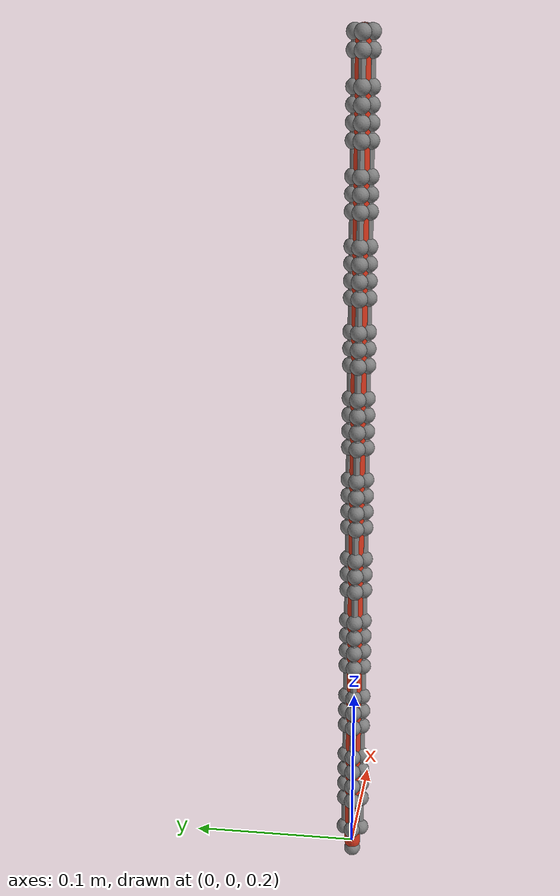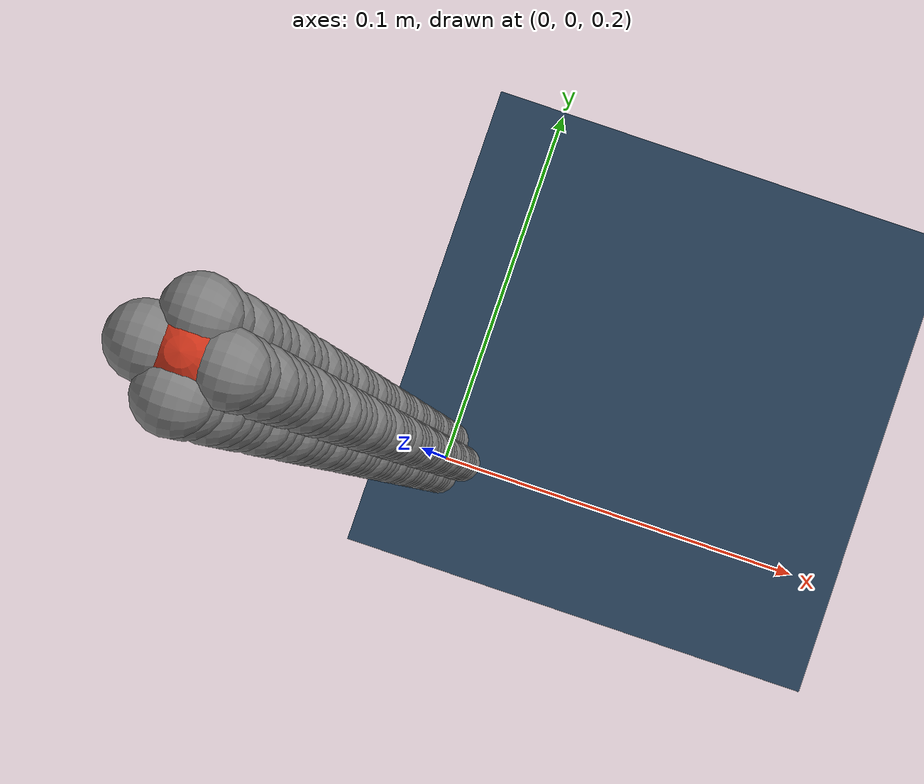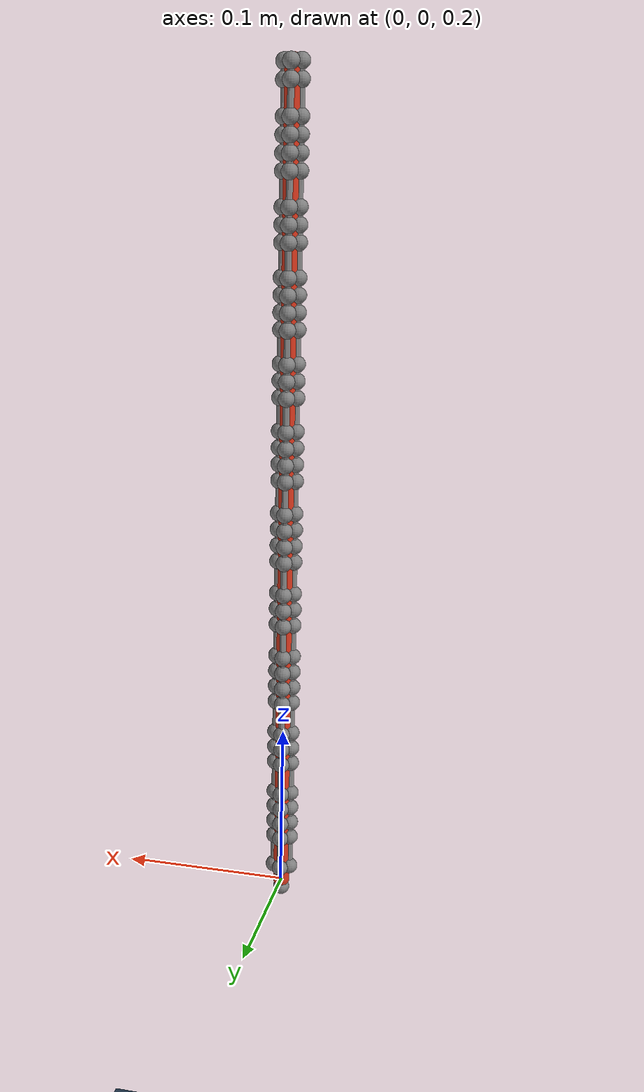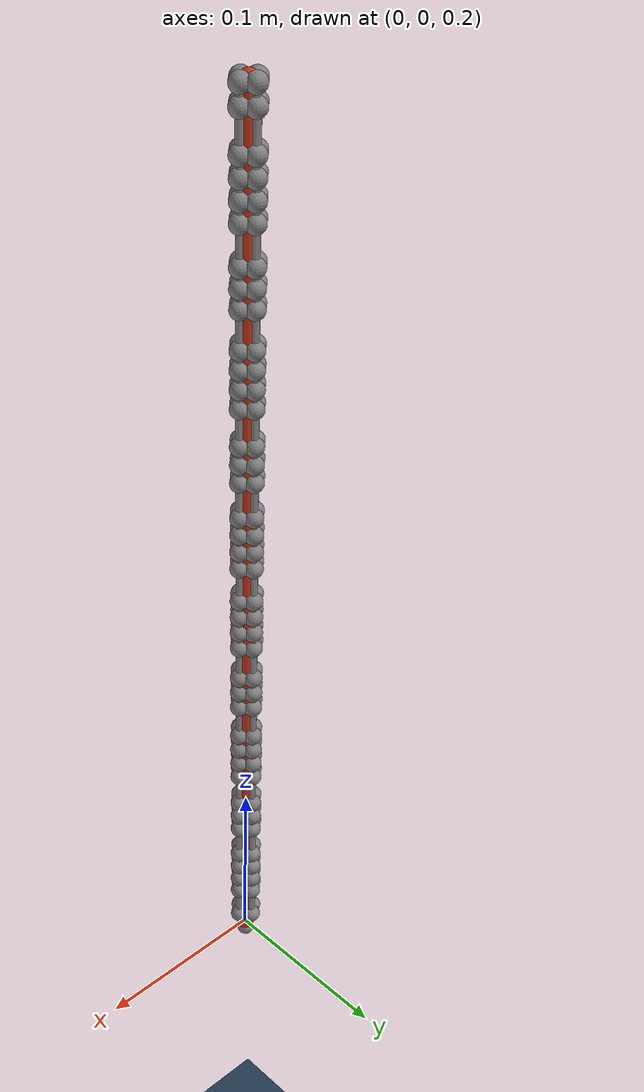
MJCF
<mujoco model="cable_trunk_model_example">
<option gravity="0 0 0"/>
  <compiler angle="radian"/>
  <extension>
    <plugin plugin="mujoco.elasticity.cable">
      <instance name="compositeactuated">
        <config key="twist" value="1e8"/>
        <config key="bend" value="1e8"/>
        <config key="vmax" value="0"/>
      </instance>
    </plugin>
  </extension>
  <custom>
    <text name="composite_actuated" data="rope_actuated"/>
  </custom>
  <asset>
    <texture type="2d" name="grid" builtin="checker" rgb1="0.1 0.2 0.3" rgb2="0.2 0.3 0.4" width="300" height="300"/>
    <material name="grid" texture="grid" texrepeat="8 8" reflectance="0.2"/>
  </asset>
  <worldbody>
    <geom size="10 10 0.01" type="plane" material="grid"/>
    <light pos="0 0 2" dir="0 0 -1"/>
    <body name="actuatedB_first" pos="0 0 0.7" quat="0 -0.707107 0 0.707107">
      <!-- Add slider joint with stiffness and damping to simulate elongation of material-->
      <joint name="slider_cable_world" pos="0 0 0" type="slide" axis="1 0 0" group="3" stiffness="1e2" damping="0.8"/>
      <geom name="actuatedG0" size="0.005 0.005" pos="0.005 0 0" quat="0.707107 0 -0.707107 0" type="capsule" rgba="0.8 0.2 0.1 1"/>
      <site name="actuatedS_first" pos="0 0 0" group="3"/>
      <!-- Add sides for tendon to pass through-->
      <site name="cable_0_y_front" pos="0 0.005 0"/>
      <site name="cable_0_y_back" pos="0 -0.005 0"/>
      <site name="cable_0_z_front" pos="0 0 0.005"/>
      <site name="cable_0_z_back" pos="0 0 -0.005"/>
      <plugin instance="compositeactuated"/>
      <body name="actuatedB_1" pos="0.00999999 0 0">
        <joint name="actuatedJ_1" pos="0 0 0" type="ball" group="3" actuatorfrclimited="false" armature="0.01" damping="0.25"/>
        <geom name="actuatedG1" size="0.005 0.00999999" pos="0.00999999 0 0" quat="0.707107 0 -0.707107 0" type="capsule" rgba="0.8 0.2 0.1 1"/>
        <!-- Add sides for tendon to pass through-->
        <site name="cable_1_y_front" pos="0 0.005 0"/>
        <site name="cable_1_y_back" pos="0 -0.005 0"/>
        <site name="cable_1_z_front" pos="0 0 0.005"/>
        <site name="cable_1_z_back" pos="0 0 -0.005"/>
        <plugin instance="compositeactuated"/>
        <body name="actuatedB_2" pos="0.02 0 0">
          <joint name="actuatedJ_2" pos="0 0 0" type="ball" group="3" actuatorfrclimited="false" armature="0.01" damping="0.25"/>
          <geom name="actuatedG2" size="0.005 0.005" pos="0.005 0 0" quat="0.707107 0 -0.707107 0" type="capsule" rgba="0.8 0.2 0.1 1"/>
          <!-- Add sides for tendon to pass through-->
          <site name="cable_2_y_front" pos="0 0.005 0"/>
          <site name="cable_2_y_back" pos="0 -0.005 0"/>
          <site name="cable_2_z_front" pos="0 0 0.005"/>
          <site name="cable_2_z_back" pos="0 0 -0.005"/>
          <plugin instance="compositeactuated"/>
          <body name="actuatedB_3" pos="0.00999999 0 0">
            <joint name="actuatedJ_3" pos="0 0 0" type="ball" group="3" actuatorfrclimited="false" armature="0.01" damping="0.25"/>
            <geom name="actuatedG3" size="0.005 0.00500003" pos="0.00500003 0 0" quat="0.707107 0 -0.707107 0" type="capsule" rgba="0.8 0.2 0.1 1"/>
            <!-- Add sides for tendon to pass through-->
            <site name="cable_3_y_front" pos="0 0.005 0"/>
            <site name="cable_3_y_back" pos="0 -0.005 0"/>
            <site name="cable_3_z_front" pos="0 0 0.005"/>
            <site name="cable_3_z_back" pos="0 0 -0.005"/>
            <plugin instance="compositeactuated"/>
            <body name="actuatedB_4" pos="0.0100001 0 0">
              <joint name="actuatedJ_4" pos="0 0 0" type="ball" group="3" actuatorfrclimited="false" armature="0.01" damping="0.25"/>
              <!-- Add sides for tendon to pass through-->
              <site name="cable_4_y_front" pos="0 0.005 0"/>
              <site name="cable_4_y_back" pos="0 -0.005 0"/>
              <site name="cable_4_z_front" pos="0 0 0.005"/>
              <site name="cable_4_z_back" pos="0 0 -0.005"/>
              <geom name="actuatedG4" size="0.005 0.005" pos="0.005 0 0" quat="0.707107 0 -0.707107 0" type="capsule" rgba="0.8 0.2 0.1 1"/>
              <plugin instance="compositeactuated"/>
              <body name="actuatedB_5" pos="0.00999999 0 0">
                <joint name="actuatedJ_5" pos="0 0 0" type="ball" group="3" actuatorfrclimited="false" armature="0.01" damping="0.25"/>
                <geom name="actuatedG5" size="0.005 0.00999999" pos="0.00999999 0 0" quat="0.707107 0 -0.707107 0" type="capsule" rgba="0.8 0.2 0.1 1"/>
                <!-- Add sides for tendon to pass through-->
                <site name="cable_5_y_front" pos="0 0.005 0"/>
                <site name="cable_5_y_back" pos="0 -0.005 0"/>
                <site name="cable_5_z_front" pos="0 0 0.005"/>
                <site name="cable_5_z_back" pos="0 0 -0.005"/>
                  <plugin instance="compositeactuated"/>
                <body name="actuatedB_6" pos="0.02 0 0">
                  <joint name="actuatedJ_6" pos="0 0 0" type="ball" group="3" actuatorfrclimited="false" armature="0.01" damping="0.25"/>
                  <geom name="actuatedG6" size="0.005 0.005" pos="0.005 0 0" quat="0.707107 0 -0.707107 0" type="capsule" rgba="0.8 0.2 0.1 1"/>
                  <!-- Add sides for tendon to pass through-->
                  <site name="cable_6_y_front" pos="0 0.005 0"/>
                  <site name="cable_6_y_back" pos="0 -0.005 0"/>
                  <site name="cable_6_z_front" pos="0 0 0.005"/>
                  <site name="cable_6_z_back" pos="0 0 -0.005"/>
                  <plugin instance="compositeactuated"/>
                  <body name="actuatedB_7" pos="0.00999999 0 0">
                    <joint name="actuatedJ_7" pos="0 0 0" type="ball" group="3" actuatorfrclimited="false" armature="0.01" damping="0.25"/>
                    <geom name="actuatedG7" size="0.005 0.005" pos="0.005 0 0" quat="0.707107 0 -0.707107 0" type="capsule" rgba="0.8 0.2 0.1 1"/>
                    <!-- Add sides for tendon to pass through-->
                    <site name="cable_7_y_front" pos="0 0.005 0"/>
                    <site name="cable_7_y_back" pos="0 -0.005 0"/>
                    <site name="cable_7_z_front" pos="0 0 0.005"/>
                    <site name="cable_7_z_back" pos="0 0 -0.005"/>
                    <plugin instance="compositeactuated"/>
                    <body name="actuatedB_8" pos="0.00999999 0 0">
                      <joint name="actuatedJ_8" pos="0 0 0" type="ball" group="3" actuatorfrclimited="false" armature="0.01" damping="0.25"/>
                      <geom name="actuatedG8" size="0.005 0.01" pos="0.01 0 0" quat="0.707107 0 -0.707107 0" type="capsule" rgba="0.8 0.2 0.1 1"/>
                      <!-- Add sides for tendon to pass through-->
                      <site name="cable_8_y_front" pos="0 0.005 0"/>
                      <site name="cable_8_y_back" pos="0 -0.005 0"/>
                      <site name="cable_8_z_front" pos="0 0 0.005"/>
                      <site name="cable_8_z_back" pos="0 0 -0.005"/>
                      <plugin instance="compositeactuated"/>
                      <body name="actuatedB_9" pos="0.02 0 0">
                        <joint name="actuatedJ_9" pos="0 0 0" type="ball" group="3" actuatorfrclimited="false" armature="0.01" damping="0.25"/>
                        <geom name="actuatedG9" size="0.005 0.005" pos="0.005 0 0" quat="0.707107 0 -0.707107 0" type="capsule" rgba="0.8 0.2 0.1 1"/>
                        <!-- Add sides for tendon to pass through-->
                        <site name="cable_9_y_front" pos="0 0.005 0"/>
                        <site name="cable_9_y_back" pos="0 -0.005 0"/>
                        <site name="cable_9_z_front" pos="0 0 0.005"/>
                        <site name="cable_9_z_back" pos="0 0 -0.005"/>
                        <plugin instance="compositeactuated"/>
                        <body name="actuatedB_10" pos="0.00999999 0 0">
                          <joint name="actuatedJ_10" pos="0 0 0" type="ball" group="3" actuatorfrclimited="false" armature="0.01" damping="0.25"/>
                          <geom name="actuatedG10" size="0.005 0.005" pos="0.005 0 0" quat="0.707107 0 -0.707107 0" type="capsule" rgba="0.8 0.2 0.1 1"/>
                          <!-- Add sides for tendon to pass through-->
                          <site name="cable_10_y_front" pos="0 0.005 0"/>
                          <site name="cable_10_y_back" pos="0 -0.005 0"/>
                          <site name="cable_10_z_front" pos="0 0 0.005"/>
                          <site name="cable_10_z_back" pos="0 0 -0.005"/>
                          <plugin instance="compositeactuated"/>
                          <body name="actuatedB_11" pos="0.00999999 0 0">
                            <joint name="actuatedJ_11" pos="0 0 0" type="ball" group="3" actuatorfrclimited="false" armature="0.01" damping="0.25"/>
                            <geom name="actuatedG11" size="0.005 0.005" pos="0.005 0 0" quat="0.707107 0 -0.707107 0" type="capsule" rgba="0.8 0.2 0.1 1"/>
                            <!-- Add sides for tendon to pass through-->
                            <site name="cable_11_y_front" pos="0 0.005 0"/>
                            <site name="cable_11_y_back" pos="0 -0.005 0"/>
                            <site name="cable_11_z_front" pos="0 0 0.005"/>
                            <site name="cable_11_z_back" pos="0 0 -0.005"/>
                            <plugin instance="compositeactuated"/>
                            <body name="actuatedB_12" pos="0.00999999 0 0">
                              <joint name="actuatedJ_12" pos="0 0 0" type="ball" group="3" actuatorfrclimited="false" armature="0.01" damping="0.25"/>
                              <geom name="actuatedG12" size="0.005 0.01" pos="0.01 0 0" quat="0.707107 0 -0.707107 0" type="capsule" rgba="0.8 0.2 0.1 1"/>
                              <!-- Add sides for tendon to pass through-->
                              <site name="cable_12_y_front" pos="0 0.005 0"/>
                              <site name="cable_12_y_back" pos="0 -0.005 0"/>
                              <site name="cable_12_z_front" pos="0 0 0.005"/>
                              <site name="cable_12_z_back" pos="0 0 -0.005"/>
                              <plugin instance="compositeactuated"/>
                              <body name="actuatedB_13" pos="0.02 0 0">
                                <joint name="actuatedJ_13" pos="0 0 0" type="ball" group="3" actuatorfrclimited="false" armature="0.01" damping="0.25"/>
                                <geom name="actuatedG13" size="0.005 0.005" pos="0.005 0 0" quat="0.707107 0 -0.707107 0" type="capsule" rgba="0.8 0.2 0.1 1"/>
                                <!-- Add sides for tendon to pass through-->
                                <site name="cable_13_y_front" pos="0 0.005 0"/>
                                <site name="cable_13_y_back" pos="0 -0.005 0"/>
                                <site name="cable_13_z_front" pos="0 0 0.005"/>
                                <site name="cable_13_z_back" pos="0 0 -0.005"/>
                                <plugin instance="compositeactuated"/>
                                <body name="actuatedB_14" pos="0.00999999 0 0">
                                  <joint name="actuatedJ_14" pos="0 0 0" type="ball" group="3" actuatorfrclimited="false" armature="0.01" damping="0.25"/>
                                  <geom name="actuatedG14" size="0.005 0.005" pos="0.005 0 0" quat="0.707107 0 -0.707107 0" type="capsule" rgba="0.8 0.2 0.1 1"/>
                                  <!-- Add sides for tendon to pass through-->
                                  <site name="cable_14_y_front" pos="0 0.005 0"/>
                                  <site name="cable_14_y_back" pos="0 -0.005 0"/>
                                  <site name="cable_14_z_front" pos="0 0 0.005"/>
                                  <site name="cable_14_z_back" pos="0 0 -0.005"/>
                                  <plugin instance="compositeactuated"/>
                                  <body name="actuatedB_15" pos="0.00999999 0 0">
                                    <joint name="actuatedJ_15" pos="0 0 0" type="ball" group="3" actuatorfrclimited="false" armature="0.01" damping="0.25"/>
                                    <geom name="actuatedG15" size="0.005 0.00999999" pos="0.00999999 0 0" quat="0.707107 0 -0.707107 0" type="capsule" rgba="0.8 0.2 0.1 1"/>
                                    <!-- Add sides for tendon to pass through-->
                                    <site name="cable_15_y_front" pos="0 0.005 0"/>
                                    <site name="cable_15_y_back" pos="0 -0.005 0"/>
                                    <site name="cable_15_z_front" pos="0 0 0.005"/>
                                    <site name="cable_15_z_back" pos="0 0 -0.005"/>
                                    <plugin instance="compositeactuated"/>
                                    <body name="actuatedB_16" pos="0.02 0 0">
                                      <joint name="actuatedJ_16" pos="0 0 0" type="ball" group="3" actuatorfrclimited="false" armature="0.01" damping="0.25"/>
                                      <geom name="actuatedG16" size="0.005 0.00500001" pos="0.00500001 0 0" quat="0.707107 0 -0.707107 0" type="capsule" rgba="0.8 0.2 0.1 1"/>
                                      <!-- Add sides for tendon to pass through-->
                                      <site name="cable_16_y_front" pos="0 0.005 0"/>
                                      <site name="cable_16_y_back" pos="0 -0.005 0"/>
                                      <site name="cable_16_z_front" pos="0 0 0.005"/>
                                      <site name="cable_16_z_back" pos="0 0 -0.005"/>
                                      <plugin instance="compositeactuated"/>
                                      <body name="actuatedB_17" pos="0.01 0 0">
                                        <joint name="actuatedJ_17" pos="0 0 0" type="ball" group="3" actuatorfrclimited="false" armature="0.01" damping="0.25"/>
                                        <geom name="actuatedG17" size="0.005 0.005" pos="0.005 0 0" quat="0.707107 0 -0.707107 0" type="capsule" rgba="0.8 0.2 0.1 1"/>
                                        <!-- Add sides for tendon to pass through-->
                                        <site name="cable_17_y_front" pos="0 0.005 0"/>
                                        <site name="cable_17_y_back" pos="0 -0.005 0"/>
                                        <site name="cable_17_z_front" pos="0 0 0.005"/>
                                        <site name="cable_17_z_back" pos="0 0 -0.005"/>
                                        <plugin instance="compositeactuated"/>
                                        <body name="actuatedB_18" pos="0.00999999 0 0">
                                          <joint name="actuatedJ_18" pos="0 0 0" type="ball" group="3" actuatorfrclimited="false" armature="0.01" damping="0.25"/>
                                          <geom name="actuatedG18" size="0.005 0.005" pos="0.005 0 0" quat="0.707107 0 -0.707107 0" type="capsule" rgba="0.8 0.2 0.1 1"/>
                                          <!-- Add sides for tendon to pass through-->
                                          <site name="cable_18_y_front" pos="0 0.005 0"/>
                                          <site name="cable_18_y_back" pos="0 -0.005 0"/>
                                          <site name="cable_18_z_front" pos="0 0 0.005"/>
                                          <site name="cable_18_z_back" pos="0 0 -0.005"/>
                                          <plugin instance="compositeactuated"/>
                                          <body name="actuatedB_19" pos="0.00999999 0 0">
                                            <joint name="actuatedJ_19" pos="0 0 0" type="ball" group="3" actuatorfrclimited="false" armature="0.01" damping="0.25"/>
                                            <geom name="actuatedG19" size="0.005 0.01" pos="0.01 0 0" quat="0.707107 0 -0.707107 0" type="capsule" rgba="0.8 0.2 0.1 1"/>
                                            <!-- Add sides for tendon to pass through-->
                                            <site name="cable_19_y_front" pos="0 0.005 0"/>
                                            <site name="cable_19_y_back" pos="0 -0.005 0"/>
                                            <site name="cable_19_z_front" pos="0 0 0.005"/>
                                            <site name="cable_19_z_back" pos="0 0 -0.005"/>
                                            <plugin instance="compositeactuated"/>
                                            <body name="actuatedB_20" pos="0.02 0 0">
                                              <joint name="actuatedJ_20" pos="0 0 0" type="ball" group="3" actuatorfrclimited="false" armature="0.01" damping="0.25"/>
                                              <geom name="actuatedG20" size="0.005 0.005" pos="0.005 0 0" quat="0.707107 0 -0.707107 0" type="capsule" rgba="0.8 0.2 0.1 1"/>
                                              <!-- Add sides for tendon to pass through-->
                                              <site name="cable_20_y_front" pos="0 0.005 0"/>
                                              <site name="cable_20_y_back" pos="0 -0.005 0"/>
                                              <site name="cable_20_z_front" pos="0 0 0.005"/>
                                              <site name="cable_20_z_back" pos="0 0 -0.005"/>
                                              <plugin instance="compositeactuated"/>
                                              <body name="actuatedB_21" pos="0.00999999 0 0">
                                                <joint name="actuatedJ_21" pos="0 0 0" type="ball" group="3" actuatorfrclimited="false" armature="0.01" damping="0.25"/>
                                                <geom name="actuatedG21" size="0.005 0.00500001" pos="0.00500001 0 0" quat="0.707107 0 -0.707107 0" type="capsule" rgba="0.8 0.2 0.1 1"/>
                                                <!-- Add sides for tendon to pass through-->
                                                <site name="cable_21_y_front" pos="0 0.005 0"/>
                                                <site name="cable_21_y_back" pos="0 -0.005 0"/>
                                                <site name="cable_21_z_front" pos="0 0 0.005"/>
                                                <site name="cable_21_z_back" pos="0 0 -0.005"/>
                                                <plugin instance="compositeactuated"/>
                                                <body name="actuatedB_22" pos="0.01 0 0">
                                                  <joint name="actuatedJ_22" pos="0 0 0" type="ball" group="3" actuatorfrclimited="false" armature="0.01" damping="0.25"/>
                                                  <geom name="actuatedG22" size="0.005 0.005" pos="0.005 0 0" quat="0.707107 0 -0.707107 0" type="capsule" rgba="0.8 0.2 0.1 1"/>
                                                  <!-- Add sides for tendon to pass through-->
                                                  <site name="cable_22_y_front" pos="0 0.005 0"/>
                                                  <site name="cable_22_y_back" pos="0 -0.005 0"/>
                                                  <site name="cable_22_z_front" pos="0 0 0.005"/>
                                                  <site name="cable_22_z_back" pos="0 0 -0.005"/>
                                                  <plugin instance="compositeactuated"/>
                                                  <body name="actuatedB_23" pos="0.00999999 0 0">
                                                    <joint name="actuatedJ_23" pos="0 0 0" type="ball" group="3" actuatorfrclimited="false" armature="0.01" damping="0.25"/>
                                                    <geom name="actuatedG23" size="0.005 0.01" pos="0.01 0 0" quat="0.707107 0 -0.707107 0" type="capsule" rgba="0.8 0.2 0.1 1"/>
                                                    <!-- Add sides for tendon to pass through-->
                                                    <site name="cable_23_y_front" pos="0 0.005 0"/>
                                                    <site name="cable_23_y_back" pos="0 -0.005 0"/>
                                                    <site name="cable_23_z_front" pos="0 0 0.005"/>
                                                    <site name="cable_23_z_back" pos="0 0 -0.005"/>
                                                    <plugin instance="compositeactuated"/>
                                                    <body name="actuatedB_24" pos="0.02 0 0">
                                                      <joint name="actuatedJ_24" pos="0 0 0" type="ball" group="3" actuatorfrclimited="false" armature="0.01" damping="0.25"/>
                                                      <geom name="actuatedG24" size="0.005 0.005" pos="0.005 0 0" quat="0.707107 0 -0.707107 0" type="capsule" rgba="0.8 0.2 0.1 1"/>
                                                      <!-- Add sides for tendon to pass through-->
                                                      <site name="cable_24_y_front" pos="0 0.005 0"/>
                                                      <site name="cable_24_y_back" pos="0 -0.005 0"/>
                                                      <site name="cable_24_z_front" pos="0 0 0.005"/>
                                                      <site name="cable_24_z_back" pos="0 0 -0.005"/>
                                                      <plugin instance="compositeactuated"/>
                                                      <body name="actuatedB_25" pos="0.00999999 0 0">
                                                        <joint name="actuatedJ_25" pos="0 0 0" type="ball" group="3" actuatorfrclimited="false" armature="0.01" damping="0.25"/>
                                                        <geom name="actuatedG25" size="0.005 0.005" pos="0.005 0 0" quat="0.707107 0 -0.707107 0" type="capsule" rgba="0.8 0.2 0.1 1"/>
                                                        <!-- Add sides for tendon to pass through-->
                                                        <site name="cable_25_y_front" pos="0 0.005 0"/>
                                                        <site name="cable_25_y_back" pos="0 -0.005 0"/>
                                                        <site name="cable_25_z_front" pos="0 0 0.005"/>
                                                        <site name="cable_25_z_back" pos="0 0 -0.005"/>
                                                        <plugin instance="compositeactuated"/>
                                                        <body name="actuatedB_26" pos="0.00999999 0 0">
                                                          <joint name="actuatedJ_26" pos="0 0 0" type="ball" group="3" actuatorfrclimited="false" armature="0.01" damping="0.25"/>
                                                          <geom name="actuatedG26" size="0.005 0.01" pos="0.01 0 0" quat="0.707107 0 -0.707107 0" type="capsule" rgba="0.8 0.2 0.1 1"/>
                                                          <!-- Add sides for tendon to pass through-->
                                                          <site name="cable_26_y_front" pos="0 0.005 0"/>
                                                          <site name="cable_26_y_back" pos="0 -0.005 0"/>
                                                          <site name="cable_26_z_front" pos="0 0 0.005"/>
                                                          <site name="cable_26_z_back" pos="0 0 -0.005"/>
                                                          <plugin instance="compositeactuated"/>
                                                          <body name="actuatedB_27" pos="0.02 0 0">
                                                            <joint name="actuatedJ_27" pos="0 0 0" type="ball" group="3" actuatorfrclimited="false" armature="0.01" damping="0.25"/>
                                                            <geom name="actuatedG27" size="0.005 0.005" pos="0.005 0 0" quat="0.707107 0 -0.707107 0" type="capsule" rgba="0.8 0.2 0.1 1"/>
                                                            <!-- Add sides for tendon to pass through-->
                                                            <site name="cable_27_y_front" pos="0 0.005 0"/>
                                                            <site name="cable_27_y_back" pos="0 -0.005 0"/>
                                                            <site name="cable_27_z_front" pos="0 0 0.005"/>
                                                            <site name="cable_27_z_back" pos="0 0 -0.005"/>
                                                            <plugin instance="compositeactuated"/>
                                                            <body name="actuatedB_28" pos="0.00999999 0 0">
                                                              <joint name="actuatedJ_28" pos="0 0 0" type="ball" group="3" actuatorfrclimited="false" armature="0.01" damping="0.25"/>
                                                              <geom name="actuatedG28" size="0.005 0.005" pos="0.005 0 0" quat="0.707107 0 -0.707107 0" type="capsule" rgba="0.8 0.2 0.1 1"/>
                                                              <!-- Add sides for tendon to pass through-->
                                                              <site name="cable_28_y_front" pos="0 0.005 0"/>
                                                              <site name="cable_28_y_back" pos="0 -0.005 0"/>
                                                              <site name="cable_28_z_front" pos="0 0 0.005"/>
                                                              <site name="cable_28_z_back" pos="0 0 -0.005"/>
                                                              <plugin instance="compositeactuated"/>
                                                              <body name="actuatedB_29" pos="0.00999999 0 0">
                                                                <joint name="actuatedJ_29" pos="0 0 0" type="ball" group="3" actuatorfrclimited="false" armature="0.01" damping="0.25"/>
                                                                <geom name="actuatedG29" size="0.005 0.00500001" pos="0.00500001 0 0" quat="0.707107 0 -0.707107 0" type="capsule" rgba="0.8 0.2 0.1 1"/>
                                                                <!-- Add sides for tendon to pass through-->
                                                                <site name="cable_29_y_front" pos="0 0.005 0"/>
                                                                <site name="cable_29_y_back" pos="0 -0.005 0"/>
                                                                <site name="cable_29_z_front" pos="0 0 0.005"/>
                                                                <site name="cable_29_z_back" pos="0 0 -0.005"/>
                                                                <plugin instance="compositeactuated"/>
                                                                <body name="actuatedB_30" pos="0.01 0 0">
                                                                  <joint name="actuatedJ_30" pos="0 0 0" type="ball" group="3" actuatorfrclimited="false" armature="0.01" damping="0.25"/>
                                                                  <geom name="actuatedG30" size="0.005 0.00999999" pos="0.00999999 0 0" quat="0.707107 0 -0.707107 0" type="capsule" rgba="0.8 0.2 0.1 1"/>
                                                                  <!-- Add sides for tendon to pass through-->
                                                                  <site name="cable_30_y_front" pos="0 0.005 0"/>
                                                                  <site name="cable_30_y_back" pos="0 -0.005 0"/>
                                                                  <site name="cable_30_z_front" pos="0 0 0.005"/>
                                                                  <site name="cable_30_z_back" pos="0 0 -0.005"/>
                                                                  <plugin instance="compositeactuated"/>
                                                                  <body name="actuatedB_31" pos="0.02 0 0">
                                                                    <joint name="actuatedJ_31" pos="0 0 0" type="ball" group="3" actuatorfrclimited="false" armature="0.01" damping="0.25"/>
                                                                    <geom name="actuatedG31" size="0.005 0.00500001" pos="0.00500001 0 0" quat="0.707107 0 -0.707107 0" type="capsule" rgba="0.8 0.2 0.1 1"/>
                                                                    <!-- Add sides for tendon to pass through-->
                                                                    <site name="cable_31_y_front" pos="0 0.005 0"/>
                                                                    <site name="cable_31_y_back" pos="0 -0.005 0"/>
                                                                    <site name="cable_31_z_front" pos="0 0 0.005"/>
                                                                    <site name="cable_31_z_back" pos="0 0 -0.005"/>
                                                                    <plugin instance="compositeactuated"/>
                                                                    <body name="actuatedB_32" pos="0.01 0 0">
                                                                      <joint name="actuatedJ_32" pos="0 0 0" type="ball" group="3" actuatorfrclimited="false" armature="0.01" damping="0.25"/>
                                                                      <geom name="actuatedG32" size="0.005 0.005" pos="0.005 0 0" quat="0.707107 0 -0.707107 0" type="capsule" rgba="0.8 0.2 0.1 1"/>
                                                                      <!-- Add sides for tendon to pass through-->
                                                                      <site name="cable_32_y_front" pos="0 0.005 0"/>
                                                                      <site name="cable_32_y_back" pos="0 -0.005 0"/>
                                                                      <site name="cable_32_z_front" pos="0 0 0.005"/>
                                                                      <site name="cable_32_z_back" pos="0 0 -0.005"/>
                                                                      <plugin instance="compositeactuated"/>
                                                                      <body name="actuatedB_33" pos="0.00999999 0 0">
                                                                        <joint name="actuatedJ_33" pos="0 0 0" type="ball" group="3" actuatorfrclimited="false" armature="0.01" damping="0.25"/>
                                                                        <geom name="actuatedG33" size="0.005 0.01" pos="0.01 0 0" quat="0.707107 0 -0.707107 0" type="capsule" rgba="0.8 0.2 0.1 1"/>
                                                                        <!-- Add sides for tendon to pass through-->
                                                                        <site name="cable_33_y_front" pos="0 0.005 0"/>
                                                                        <site name="cable_33_y_back" pos="0 -0.005 0"/>
                                                                        <site name="cable_33_z_front" pos="0 0 0.005"/>
                                                                        <site name="cable_33_z_back" pos="0 0 -0.005"/>
                                                                        <plugin instance="compositeactuated"/>
                                                                        <body name="actuatedB_34" pos="0.02 0 0">
                                                                          <joint name="actuatedJ_34" pos="0 0 0" type="ball" group="3" actuatorfrclimited="false" armature="0.01" damping="0.25"/>
                                                                          <geom name="actuatedG34" size="0.005 0.005" pos="0.005 0 0" quat="0.707107 0 -0.707107 0" type="capsule" rgba="0.8 0.2 0.1 1"/>
                                                                          <!-- Add sides for tendon to pass through-->
                                                                          <site name="cable_34_y_front" pos="0 0.005 0"/>
                                                                          <site name="cable_34_y_back" pos="0 -0.005 0"/>
                                                                          <site name="cable_34_z_front" pos="0 0 0.005"/>
                                                                          <site name="cable_34_z_back" pos="0 0 -0.005"/>
                                                                          <plugin instance="compositeactuated"/>
                                                                          <body name="actuatedB_35" pos="0.00999999 0 0">
                                                                            <joint name="actuatedJ_35" pos="0 0 0" type="ball" group="3" actuatorfrclimited="false" armature="0.01" damping="0.25"/>
                                                                            <geom name="actuatedG35" size="0.005 0.005" pos="0.005 0 0" quat="0.707107 0 -0.707107 0" type="capsule" rgba="0.8 0.2 0.1 1"/>
                                                                            <!-- Add sides for tendon to pass through-->
                                                                            <site name="cable_35_y_front" pos="0 0.005 0"/>
                                                                            <site name="cable_35_y_back" pos="0 -0.005 0"/>
                                                                            <site name="cable_35_z_front" pos="0 0 0.005"/>
                                                                            <site name="cable_35_z_back" pos="0 0 -0.005"/>
                                                                            <plugin instance="compositeactuated"/>
                                                                            <body name="actuatedB_36" pos="0.01 0 0">
                                                                              <joint name="actuatedJ_36" pos="0 0 0" type="ball" group="3" actuatorfrclimited="false" armature="0.01" damping="0.25"/>
                                                                              <geom name="actuatedG36" size="0.005 0.005" pos="0.005 0 0" quat="0.707107 0 -0.707107 0" type="capsule" rgba="0.8 0.2 0.1 1"/>
                                                                              <!-- Add sides for tendon to pass through-->
                                                                              <site name="cable_36_y_front" pos="0 0.005 0"/>
                                                                              <site name="cable_36_y_back" pos="0 -0.005 0"/>
                                                                              <site name="cable_36_z_front" pos="0 0 0.005"/>
                                                                              <site name="cable_36_z_back" pos="0 0 -0.005"/>
                                                                              <plugin instance="compositeactuated"/>
                                                                              <body name="actuatedB_37" pos="0.00999999 0 0">
                                                                                <joint name="actuatedJ_37" pos="0 0 0" type="ball" group="3" actuatorfrclimited="false" armature="0.01" damping="0.25"/>
                                                                                <geom name="actuatedG37" size="0.005 0.01" pos="0.01 0 0" quat="0.707107 0 -0.707107 0" type="capsule" rgba="0.8 0.2 0.1 1"/>
                                                                                <!-- Add sides for tendon to pass through-->
                                                                                <site name="cable_37_y_front" pos="0 0.005 0"/>
                                                                                <site name="cable_37_y_back" pos="0 -0.005 0"/>
                                                                                <site name="cable_37_z_front" pos="0 0 0.005"/>
                                                                                <site name="cable_37_z_back" pos="0 0 -0.005"/>
                                                                                <plugin instance="compositeactuated"/>
                                                                                <body name="actuatedB_last" pos="0.02 0 0">
                                                                                  <joint name="actuatedJ_last" pos="0 0 0" type="ball" group="3" actuatorfrclimited="false" armature="0.01" damping="0.25"/>
                                                                                  <geom name="actuatedG38" size="0.005 0.005" pos="0.005 0 0" quat="0.707107 0 -0.707107 0" type="capsule" rgba="0.8 0.2 0.1 1"/>
                                                                                  <!-- Add sides for tendon to pass through-->
                                                                                  <site name="cable_38_y_front" pos="0 0.005 0"/>
                                                                                  <site name="cable_38_y_back" pos="0 -0.005 0"/>
                                                                                  <site name="cable_38_z_front" pos="0 0 0.005"/>
                                                                                  <site name="cable_38_z_back" pos="0 0 -0.005"/>
                                                                                  <site name="endeffector" pos="0.015 0 0"/>
                                                                                  <plugin instance="compositeactuated"/>
                                                                                </body>
                                                                              </body>
                                                                            </body>
                                                                          </body>
                                                                        </body>
                                                                      </body>
                                                                    </body>
                                                                  </body>
                                                                </body>
                                                              </body>
                                                            </body>
                                                          </body>
                                                        </body>
                                                      </body>
                                                    </body>
                                                  </body>
                                                </body>
                                              </body>
                                            </body>
                                          </body>
                                        </body>
                                      </body>
                                    </body>
                                  </body>
                                </body>
                              </body>
                            </body>
                          </body>
                        </body>
                      </body>
                    </body>
                  </body>
                </body>
              </body>
            </body>
          </body>
        </body>
      </body>
    </body>
  </worldbody>
  <!-- add tendons attached to trunk-->
  <!-- tendons attached to end of trunk-->
  <tendon>
    <spatial name="tendon_y_front_end" stiffness="1.0" damping="2.0" width="0.002">
        <site site="cable_0_y_front"/>
        <site site="cable_1_y_front"/>
        <site site="cable_2_y_front"/>
        <site site="cable_3_y_front"/>
        <site site="cable_4_y_front"/>
        <site site="cable_5_y_front"/>
        <site site="cable_6_y_front"/>
        <site site="cable_7_y_front"/>
        <site site="cable_8_y_front"/>
        <site site="cable_9_y_front"/>
        <site site="cable_10_y_front"/>
        <site site="cable_11_y_front"/>
        <site site="cable_12_y_front"/>
        <site site="cable_13_y_front"/>
        <site site="cable_14_y_front"/>
        <site site="cable_15_y_front"/>
        <site site="cable_16_y_front"/>
        <site site="cable_17_y_front"/>
        <site site="cable_18_y_front"/>
        <site site="cable_19_y_front"/>
        <site site="cable_20_y_front"/>
        <site site="cable_21_y_front"/>
        <site site="cable_22_y_front"/>
        <site site="cable_23_y_front"/>
        <site site="cable_24_y_front"/>
        <site site="cable_25_y_front"/>
        <site site="cable_26_y_front"/>
        <site site="cable_27_y_front"/>
        <site site="cable_28_y_front"/>
        <site site="cable_29_y_front"/>
        <site site="cable_30_y_front"/>
        <site site="cable_31_y_front"/>
        <site site="cable_32_y_front"/>
        <site site="cable_33_y_front"/>
        <site site="cable_34_y_front"/>
        <site site="cable_35_y_front"/>
        <site site="cable_36_y_front"/>
        <site site="cable_37_y_front"/>
        <site site="cable_38_y_front"/>
    </spatial>
  </tendon>
  <tendon>
    <spatial name="tendon_y_back_end" stiffness="1.0" damping="2.0" width="0.002">
        <site site="cable_0_y_back"/>
        <site site="cable_1_y_back"/>
        <site site="cable_2_y_back"/>
        <site site="cable_3_y_back"/>
        <site site="cable_4_y_back"/>
        <site site="cable_5_y_back"/>
        <site site="cable_6_y_back"/>
        <site site="cable_7_y_back"/>
        <site site="cable_8_y_back"/>
        <site site="cable_9_y_back"/>
        <site site="cable_10_y_back"/>
        <site site="cable_11_y_back"/>
        <site site="cable_12_y_back"/>
        <site site="cable_13_y_back"/>
        <site site="cable_14_y_back"/>
        <site site="cable_15_y_back"/>
        <site site="cable_16_y_back"/>
        <site site="cable_17_y_back"/>
        <site site="cable_18_y_back"/>
        <site site="cable_19_y_back"/>
        <site site="cable_20_y_back"/>
        <site site="cable_21_y_back"/>
        <site site="cable_22_y_back"/>
        <site site="cable_23_y_back"/>
        <site site="cable_24_y_back"/>
        <site site="cable_25_y_back"/>
        <site site="cable_26_y_back"/>
        <site site="cable_27_y_back"/>
        <site site="cable_28_y_back"/>
        <site site="cable_29_y_back"/>
        <site site="cable_30_y_back"/>
        <site site="cable_31_y_back"/>
        <site site="cable_32_y_back"/>
        <site site="cable_33_y_back"/>
        <site site="cable_34_y_back"/>
        <site site="cable_35_y_back"/>
        <site site="cable_36_y_back"/>
        <site site="cable_37_y_back"/>
        <site site="cable_38_y_back"/>
    </spatial>
  </tendon>
  <tendon>
    <spatial name="tendon_z_front_end" stiffness="1.0" damping="2.0" width="0.002">
        <site site="cable_0_z_front"/>
        <site site="cable_1_z_front"/>
        <site site="cable_2_z_front"/>
        <site site="cable_3_z_front"/>
        <site site="cable_4_z_front"/>
        <site site="cable_5_z_front"/>
        <site site="cable_6_z_front"/>
        <site site="cable_7_z_front"/>
        <site site="cable_8_z_front"/>
        <site site="cable_9_z_front"/>
        <site site="cable_10_z_front"/>
        <site site="cable_11_z_front"/>
        <site site="cable_12_z_front"/>
        <site site="cable_13_z_front"/>
        <site site="cable_14_z_front"/>
        <site site="cable_15_z_front"/>
        <site site="cable_16_z_front"/>
        <site site="cable_17_z_front"/>
        <site site="cable_18_z_front"/>
        <site site="cable_19_z_front"/>
        <site site="cable_20_z_front"/>
        <site site="cable_21_z_front"/>
        <site site="cable_22_z_front"/>
        <site site="cable_23_z_front"/>
        <site site="cable_24_z_front"/>
        <site site="cable_25_z_front"/>
        <site site="cable_26_z_front"/>
        <site site="cable_27_z_front"/>
        <site site="cable_28_z_front"/>
        <site site="cable_29_z_front"/>
        <site site="cable_30_z_front"/>
        <site site="cable_31_z_front"/>
        <site site="cable_32_z_front"/>
        <site site="cable_33_z_front"/>
        <site site="cable_34_z_front"/>
        <site site="cable_35_z_front"/>
        <site site="cable_36_z_front"/>
        <site site="cable_37_z_front"/>
        <site site="cable_38_z_front"/>
    </spatial>
  </tendon>
  <tendon>
    <spatial name="tendon_z_back_end" stiffness="1.0" damping="2.0" width="0.002">
        <site site="cable_0_z_back"/>
        <site site="cable_1_z_back"/>
        <site site="cable_2_z_back"/>
        <site site="cable_3_z_back"/>
        <site site="cable_4_z_back"/>
        <site site="cable_5_z_back"/>
        <site site="cable_6_z_back"/>
        <site site="cable_7_z_back"/>
        <site site="cable_8_z_back"/>
        <site site="cable_9_z_back"/>
        <site site="cable_10_z_back"/>
        <site site="cable_11_z_back"/>
        <site site="cable_12_z_back"/>
        <site site="cable_13_z_back"/>
        <site site="cable_14_z_back"/>
        <site site="cable_15_z_back"/>
        <site site="cable_16_z_back"/>
        <site site="cable_17_z_back"/>
        <site site="cable_18_z_back"/>
        <site site="cable_19_z_back"/>
        <site site="cable_20_z_back"/>
        <site site="cable_21_z_back"/>
        <site site="cable_22_z_back"/>
        <site site="cable_23_z_back"/>
        <site site="cable_24_z_back"/>
        <site site="cable_25_z_back"/>
        <site site="cable_26_z_back"/>
        <site site="cable_27_z_back"/>
        <site site="cable_28_z_back"/>
        <site site="cable_29_z_back"/>
        <site site="cable_30_z_back"/>
        <site site="cable_31_z_back"/>
        <site site="cable_32_z_back"/>
        <site site="cable_33_z_back"/>
        <site site="cable_34_z_back"/>
        <site site="cable_35_z_back"/>
        <site site="cable_36_z_back"/>
        <site site="cable_37_z_back"/>
        <site site="cable_38_z_back"/>
    </spatial>
  </tendon>
  <!-- Muscles actuating tendons-->
  <actuator>
    <muscle tendon="tendon_y_front_end"/>
    <muscle tendon="tendon_y_back_end"/>
    <muscle tendon="tendon_z_front_end"/>
    <muscle tendon="tendon_z_back_end"/>
  </actuator>
  <contact>
    <exclude body1="actuatedB_first" body2="actuatedB_1"/>
    <exclude body1="actuatedB_1" body2="actuatedB_2"/>
    <exclude body1="actuatedB_2" body2="actuatedB_3"/>
    <exclude body1="actuatedB_3" body2="actuatedB_4"/>
    <exclude body1="actuatedB_4" body2="actuatedB_5"/>
    <exclude body1="actuatedB_5" body2="actuatedB_6"/>
    <exclude body1="actuatedB_6" body2="actuatedB_7"/>
    <exclude body1="actuatedB_7" body2="actuatedB_8"/>
    <exclude body1="actuatedB_8" body2="actuatedB_9"/>
    <exclude body1="actuatedB_9" body2="actuatedB_10"/>
    <exclude body1="actuatedB_10" body2="actuatedB_11"/>
    <exclude body1="actuatedB_11" body2="actuatedB_12"/>
    <exclude body1="actuatedB_12" body2="actuatedB_13"/>
    <exclude body1="actuatedB_13" body2="actuatedB_14"/>
    <exclude body1="actuatedB_14" body2="actuatedB_15"/>
    <exclude body1="actuatedB_15" body2="actuatedB_16"/>
    <exclude body1="actuatedB_16" body2="actuatedB_17"/>
    <exclude body1="actuatedB_17" body2="actuatedB_18"/>
    <exclude body1="actuatedB_18" body2="actuatedB_19"/>
    <exclude body1="actuatedB_19" body2="actuatedB_20"/>
    <exclude body1="actuatedB_20" body2="actuatedB_21"/>
    <exclude body1="actuatedB_21" body2="actuatedB_22"/>
    <exclude body1="actuatedB_22" body2="actuatedB_23"/>
    <exclude body1="actuatedB_23" body2="actuatedB_24"/>
    <exclude body1="actuatedB_24" body2="actuatedB_25"/>
    <exclude body1="actuatedB_25" body2="actuatedB_26"/>
    <exclude body1="actuatedB_26" body2="actuatedB_27"/>
    <exclude body1="actuatedB_27" body2="actuatedB_28"/>
    <exclude body1="actuatedB_28" body2="actuatedB_29"/>
    <exclude body1="actuatedB_29" body2="actuatedB_30"/>
    <exclude body1="actuatedB_30" body2="actuatedB_31"/>
    <exclude body1="actuatedB_31" body2="actuatedB_32"/>
    <exclude body1="actuatedB_32" body2="actuatedB_33"/>
    <exclude body1="actuatedB_33" body2="actuatedB_34"/>
    <exclude body1="actuatedB_34" body2="actuatedB_35"/>
    <exclude body1="actuatedB_35" body2="actuatedB_36"/>
    <exclude body1="actuatedB_36" body2="actuatedB_37"/>
    <exclude body1="actuatedB_37" body2="actuatedB_last"/>
  </contact>
</mujoco>
